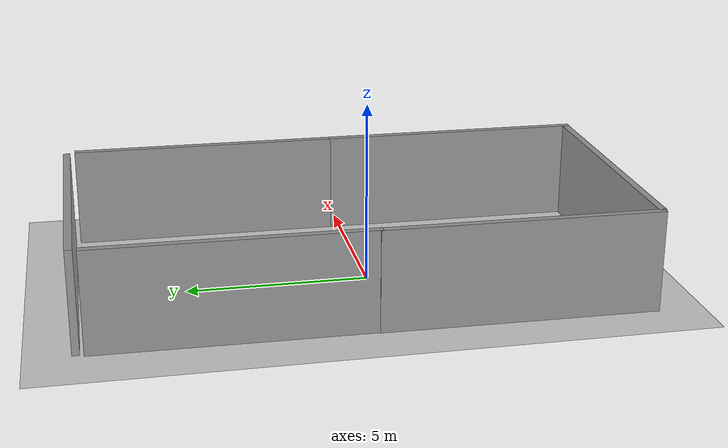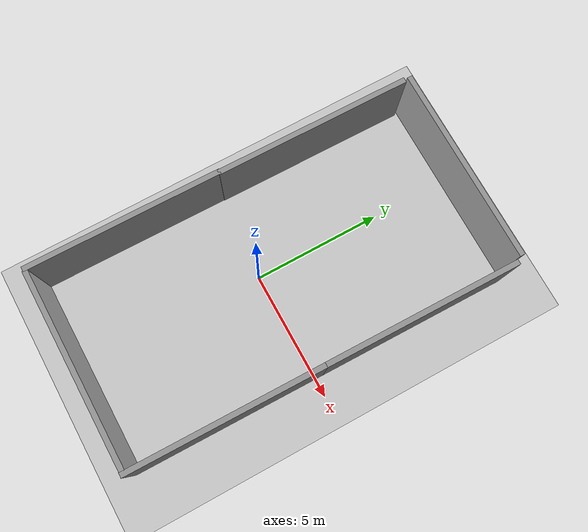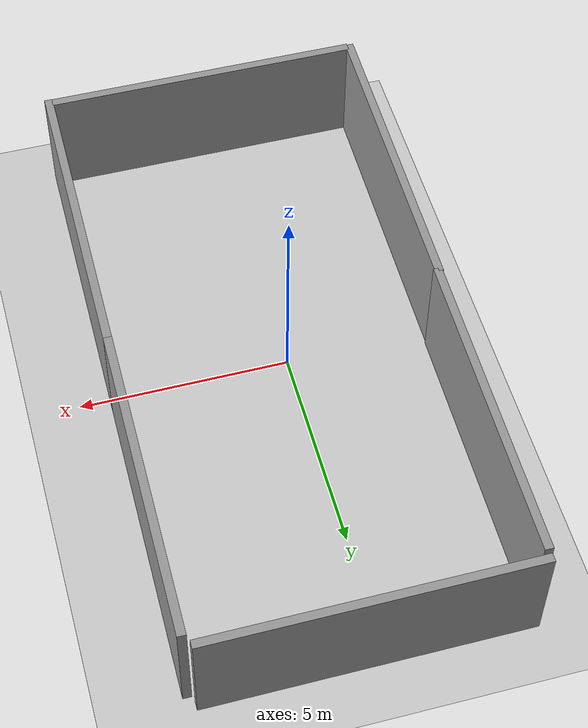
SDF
<sdf version="1.7">
 <world name="default">
  <light name="sun" type="directional">
   <pose>0 0 10 0 -0 0</pose>
   <diffuse>0.8 0.8 0.8 1</diffuse>
   <specular>0.2 0.2 0.2 1</specular>
   <attenuation>
    <range>1000</range>
    <constant>0.9</constant>
    <linear>0.01</linear>
    <quadratic>0.001</quadratic>
   </attenuation>
   <direction>-0.5 0.1 -0.9</direction>
   <spot><inner_angle>0</inner_angle><outer_angle>0</outer_angle><falloff>0</falloff></spot>
  </light>
  <model name="ground_plane">
   <static>1</static>
   <link name="link">
    <collision name="collision">
     <geometry><plane><normal>0 0 1</normal><size>100 100</size></plane></geometry>
     <surface><friction><ode><mu>100</mu><mu2>50</mu2></ode></friction></surface>
    </collision>
    <visual name="visual">
     <cast_shadows>0</cast_shadows>
     <geometry><plane><normal>0 0 1</normal><size>100 100</size></plane></geometry>
     <material>
      <script><uri>file://media/materials/scripts/gazebo.material</uri><name>Gazebo/Grey</name></script>
     </material>
    </visual>
   </link>
  </model>
  <gravity>0 0 -9.8</gravity>
  <magnetic_field>6e-06 2.3e-05 -4.2e-05</magnetic_field>
  <atmosphere type="adiabatic"/>
  <physics type="ode">
   <max_step_size>0.001</max_step_size>
   <real_time_factor>1</real_time_factor>
   <real_time_update_rate>1000</real_time_update_rate>
  </physics>
  <scene><ambient>0.4 0.4 0.4 1</ambient><background>0.7 0.7 0.7 1</background><shadows>1</shadows></scene>
  <spherical_coordinates>
   <surface_model>EARTH_WGS84</surface_model>
   <latitude_deg>0</latitude_deg>
   <longitude_deg>0</longitude_deg>
   <elevation>0</elevation>
   <heading_deg>0</heading_deg>
  </spherical_coordinates>
  <model name="grey_wall">
   <static>1</static>
   <link name="link">
    <pose>0 0 1.4 0 -0 0</pose>
    <collision name="collision"><geometry><box><size>7.5 0.2 2.8</size></box></geometry></collision>
    <visual name="visual">
     <cast_shadows>0</cast_shadows>
     <geometry><box><size>7.5 0.2 2.8</size></box></geometry>
     <material>
      <script>
       <uri>model://grey_wall/materials/scripts</uri>
       <uri>model://grey_wall/materials/textures</uri>
       <name>vrc/grey_wall</name>
      </script>
     </material>
    </visual>
   </link>
   <pose>0.28089 -7.07576 0 0 -0 0</pose>
  </model>
  <model name="deletion_wall">
   <static>1</static>
   <link name="sensing_link">
    <gravity>0</gravity>
    <sensor name="object_disposal_contact" type="contact">
     <update_rate>10</update_rate>
     <contact><collision>collision</collision><topic>__default_topic__</topic></contact>
    </sensor>
    <collision name="collision"><geometry><box><size>0.1 1 1</size></box></geometry></collision>
    <visual name="visual">
     <geometry><box><size>0.1 1 1</size></box></geometry>
     <cast_shadows>0</cast_shadows>
     <transparency>100</transparency>
    </visual>
   </link>
   <plugin name="object_disposal_plugin" filename="libObjectDisposalPlugin.so">
    <contact_sensor_name>object_disposal_contact</contact_sensor_name>
    <contact_side_normal>1 0 0</contact_side_normal>
    <disposal_pose>30 30 0 0 0 0</disposal_pose>
    <update_rate>5</update_rate>
   </plugin>
   <pose>-0.858094 -7.33608 0 0 -0 0</pose>
  </model>
  <model name="grey_wall_clone">
   <static>1</static>
   <link name="link">
    <pose>0 0 1.4 0 -0 0</pose>
    <collision name="collision"><geometry><box><size>7.5 0.2 2.8</size></box></geometry></collision>
    <visual name="visual">
     <cast_shadows>0</cast_shadows>
     <geometry><box><size>7.5 0.2 2.8</size></box></geometry>
     <material>
      <script>
       <uri>model://grey_wall/materials/scripts</uri>
       <uri>model://grey_wall/materials/textures</uri>
       <name>vrc/grey_wall</name>
      </script>
     </material>
    </visual>
   </link>
   <pose>-3.48303 -3.38643 0 0 0 -1.58147</pose>
  </model>
  <model name="grey_wall_clone_clone">
   <static>1</static>
   <link name="link">
    <pose>0 0 1.4 0 -0 0</pose>
    <collision name="collision"><geometry><box><size>7.5 0.2 2.8</size></box></geometry></collision>
    <visual name="visual">
     <cast_shadows>0</cast_shadows>
     <geometry><box><size>7.5 0.2 2.8</size></box></geometry>
     <material>
      <script>
       <uri>model://grey_wall/materials/scripts</uri>
       <uri>model://grey_wall/materials/textures</uri>
       <name>vrc/grey_wall</name>
      </script>
     </material>
    </visual>
   </link>
   <pose>-3.38256 4.0372 0 0 0 -1.58147</pose>
  </model>
  <model name="grey_wall_clone_clone_0">
   <static>1</static>
   <link name="link">
    <pose>0 0 1.4 0 -0 0</pose>
    <collision name="collision"><geometry><box><size>7.5 0.2 2.8</size></box></geometry></collision>
    <visual name="visual">
     <cast_shadows>0</cast_shadows>
     <geometry><box><size>7.5 0.2 2.8</size></box></geometry>
     <material>
      <script>
       <uri>model://grey_wall/materials/scripts</uri>
       <uri>model://grey_wall/materials/textures</uri>
       <name>vrc/grey_wall</name>
      </script>
     </material>
    </visual>
   </link>
   <pose>4.15114 -3.43708 0 0 0 -1.58147</pose>
  </model>
  <model name="grey_wall_clone_clone_0_clone">
   <static>1</static>
   <link name="link">
    <pose>0 0 1.4 0 -0 0</pose>
    <collision name="collision"><geometry><box><size>7.5 0.2 2.8</size></box></geometry></collision>
    <visual name="visual">
     <cast_shadows>0</cast_shadows>
     <geometry><box><size>7.5 0.2 2.8</size></box></geometry>
     <material>
      <script>
       <uri>model://grey_wall/materials/scripts</uri>
       <uri>model://grey_wall/materials/textures</uri>
       <name>vrc/grey_wall</name>
      </script>
     </material>
    </visual>
   </link>
   <pose>4.22921 4.00917 0 0 0 -1.58147</pose>
  </model>
  <model name="grey_wall_clone_0">
   <static>1</static>
   <link name="link">
    <pose>0 0 1.4 0 -0 0</pose>
    <collision name="collision"><geometry><box><size>7.5 0.2 2.8</size></box></geometry></collision>
    <visual name="visual">
     <cast_shadows>0</cast_shadows>
     <geometry><box><size>7.5 0.2 2.8</size></box></geometry>
     <material>
      <script>
       <uri>model://grey_wall/materials/scripts</uri>
       <uri>model://grey_wall/materials/textures</uri>
       <name>vrc/grey_wall</name>
      </script>
     </material>
    </visual>
   </link>
   <pose>0.383389 7.98686 0 0 -0 0</pose>
  </model>
 </world>
</sdf>
